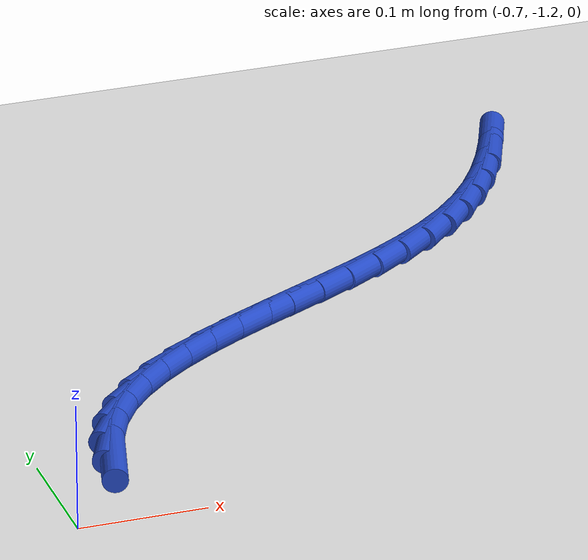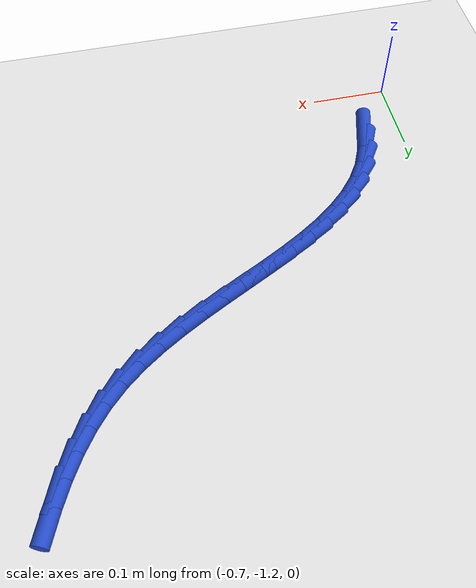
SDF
<sdf version="1.6">
 <world name="default">
  <model name="ground_plane">
   <static>1</static>
   <link name="link">
    <collision name="collision">
     <geometry><plane><normal>0 0 1</normal><size>100 100</size></plane></geometry>
     <surface><friction><ode><mu>100</mu><mu2>50</mu2></ode></friction></surface>
    </collision>
    <visual name="visual">
     <cast_shadows>0</cast_shadows>
     <geometry><plane><normal>0 0 1</normal><size>100 100</size></plane></geometry>
     <material>
      <script><uri>file://media/materials/scripts/gazebo.material</uri><name>Gazebo/WhiteGlow</name></script>
     </material>
    </visual>
   </link>
  </model>
  <model name="line">
   <link name="link_215">
    <pose>-0.6466388675362627 -1.117552065015996 0.01 0 1.57 1.3042101778303579</pose>
    <collision name="collision">
     <geometry><cylinder><radius>0.01</radius><length>0.08</length></cylinder></geometry>
    </collision>
    <visual name="visual">
     <material>
      <script><name>Gazebo/Blue</name><uri>file://media/materials/scripts/gazebo.material</uri></script>
     </material>
     <geometry><cylinder><radius>0.01</radius><length>0.08</length></cylinder></geometry>
    </visual>
   </link>
   <link name="link_216">
    <pose>-0.6388237834743751 -1.0889344253515574 0.01 0 1.57 1.151868854428709</pose>
    <collision name="collision">
     <geometry><cylinder><radius>0.01</radius><length>0.08</length></cylinder></geometry>
    </collision>
    <visual name="visual">
     <material>
      <script><name>Gazebo/Blue</name><uri>file://media/materials/scripts/gazebo.material</uri></script>
     </material>
     <geometry><cylinder><radius>0.01</radius><length>0.08</length></cylinder></geometry>
    </visual>
   </link>
   <link name="link_217">
    <pose>-0.6272215906638352 -1.0628788712777095 0.01 0 1.57 0.9947303204516976</pose>
    <collision name="collision">
     <geometry><cylinder><radius>0.01</radius><length>0.08</length></cylinder></geometry>
    </collision>
    <visual name="visual">
     <material>
      <script><name>Gazebo/Blue</name><uri>file://media/materials/scripts/gazebo.material</uri></script>
     </material>
     <geometry><cylinder><radius>0.01</radius><length>0.08</length></cylinder></geometry>
    </visual>
   </link>
   <link name="link_218">
    <pose>-0.6119136477595648 -1.0393122454727692 0.01 0 1.57 0.8556499760756939</pose>
    <collision name="collision">
     <geometry><cylinder><radius>0.01</radius><length>0.08</length></cylinder></geometry>
    </collision>
    <visual name="visual">
     <material>
      <script><name>Gazebo/Blue</name><uri>file://media/materials/scripts/gazebo.material</uri></script>
     </material>
     <geometry><cylinder><radius>0.01</radius><length>0.08</length></cylinder></geometry>
    </visual>
   </link>
   <link name="link_219">
    <pose>-0.5933403230425779 -1.017927141512641 0.01 0 1.57 0.7392959042799829</pose>
    <collision name="collision">
     <geometry><cylinder><radius>0.01</radius><length>0.08</length></cylinder></geometry>
    </collision>
    <visual name="visual">
     <material>
      <script><name>Gazebo/Blue</name><uri>file://media/materials/scripts/gazebo.material</uri></script>
     </material>
     <geometry><cylinder><radius>0.01</radius><length>0.08</length></cylinder></geometry>
    </visual>
   </link>
   <link name="link_220">
    <pose>-0.5719419847938865 -0.9984161529732266 0.01 0 1.57 0.6463753889763961</pose>
    <collision name="collision">
     <geometry><cylinder><radius>0.01</radius><length>0.08</length></cylinder></geometry>
    </collision>
    <visual name="visual">
     <material>
      <script><name>Gazebo/Blue</name><uri>file://media/materials/scripts/gazebo.material</uri></script>
     </material>
     <geometry><cylinder><radius>0.01</radius><length>0.08</length></cylinder></geometry>
    </visual>
   </link>
   <link name="link_221">
    <pose>-0.5481590012945052 -0.9804718734304303 0.01 0 1.57 0.5753432341024822</pose>
    <collision name="collision">
     <geometry><cylinder><radius>0.01</radius><length>0.08</length></cylinder></geometry>
    </collision>
    <visual name="visual">
     <material>
      <script><name>Gazebo/Blue</name><uri>file://media/materials/scripts/gazebo.material</uri></script>
     </material>
     <geometry><cylinder><radius>0.01</radius><length>0.08</length></cylinder></geometry>
    </visual>
   </link>
   <link name="link_222">
    <pose>-0.5224317408254467 -0.9637868964601546 0.01 0 1.57 0.523906033758094</pose>
    <collision name="collision">
     <geometry><cylinder><radius>0.01</radius><length>0.08</length></cylinder></geometry>
    </collision>
    <visual name="visual">
     <material>
      <script><name>Gazebo/Blue</name><uri>file://media/materials/scripts/gazebo.material</uri></script>
     </material>
     <geometry><cylinder><radius>0.01</radius><length>0.08</length></cylinder></geometry>
    </visual>
   </link>
   <link name="link_223">
    <pose>-0.4952005716677239 -0.9480538156383019 0.01 0 1.57 0.48990447630371464</pose>
    <collision name="collision">
     <geometry><cylinder><radius>0.01</radius><length>0.08</length></cylinder></geometry>
    </collision>
    <visual name="visual">
     <material>
      <script><name>Gazebo/Blue</name><uri>file://media/materials/scripts/gazebo.material</uri></script>
     </material>
     <geometry><cylinder><radius>0.01</radius><length>0.08</length></cylinder></geometry>
    </visual>
   </link>
   <link name="link_224">
    <pose>-0.4669058621023503 -0.9329652245407761 0.01 0 1.57 0.4717085433666247</pose>
    <collision name="collision">
     <geometry><cylinder><radius>0.01</radius><length>0.08</length></cylinder></geometry>
    </collision>
    <visual name="visual">
     <material>
      <script><name>Gazebo/Blue</name><uri>file://media/materials/scripts/gazebo.material</uri></script>
     </material>
     <geometry><cylinder><radius>0.01</radius><length>0.08</length></cylinder></geometry>
    </visual>
   </link>
   <link name="link_225">
    <pose>-0.4379879804103389 -0.91821371674348 0.01 0 1.57 0.46835082781716775</pose>
    <collision name="collision">
     <geometry><cylinder><radius>0.01</radius><length>0.08</length></cylinder></geometry>
    </collision>
    <visual name="visual">
     <material>
      <script><name>Gazebo/Blue</name><uri>file://media/materials/scripts/gazebo.material</uri></script>
     </material>
     <geometry><cylinder><radius>0.01</radius><length>0.08</length></cylinder></geometry>
    </visual>
   </link>
   <link name="link_226">
    <pose>-0.4088872948727028 -0.903491885822316 0.01 0 1.57 0.47955033473732267</pose>
    <collision name="collision">
     <geometry><cylinder><radius>0.01</radius><length>0.08</length></cylinder></geometry>
    </collision>
    <visual name="visual">
     <material>
      <script><name>Gazebo/Blue</name><uri>file://media/materials/scripts/gazebo.material</uri></script>
     </material>
     <geometry><cylinder><radius>0.01</radius><length>0.08</length></cylinder></geometry>
    </visual>
   </link>
   <link name="link_227">
    <pose>-0.3800441737704553 -0.8884923253531876 0.01 0 1.57 0.5056986510972659</pose>
    <collision name="collision">
     <geometry><cylinder><radius>0.01</radius><length>0.08</length></cylinder></geometry>
    </collision>
    <visual name="visual">
     <material>
      <script><name>Gazebo/Blue</name><uri>file://media/materials/scripts/gazebo.material</uri></script>
     </material>
     <geometry><cylinder><radius>0.01</radius><length>0.08</length></cylinder></geometry>
    </visual>
   </link>
   <link name="link_228">
    <pose>-0.3518989853846096 -0.8729076289119978 0.01 0 1.57 0.5478219806365758</pose>
    <collision name="collision">
     <geometry><cylinder><radius>0.01</radius><length>0.08</length></cylinder></geometry>
    </collision>
    <visual name="visual">
     <material>
      <script><name>Gazebo/Blue</name><uri>file://media/materials/scripts/gazebo.material</uri></script>
     </material>
     <geometry><cylinder><radius>0.01</radius><length>0.08</length></cylinder></geometry>
    </visual>
   </link>
   <link name="link_229">
    <pose>-0.3248920979961781 -0.856430390074649 0.01 0 1.57 0.6074837078664357</pose>
    <collision name="collision">
     <geometry><cylinder><radius>0.01</radius><length>0.08</length></cylinder></geometry>
    </collision>
    <visual name="visual">
     <material>
      <script><name>Gazebo/Blue</name><uri>file://media/materials/scripts/gazebo.material</uri></script>
     </material>
     <geometry><cylinder><radius>0.01</radius><length>0.08</length></cylinder></geometry>
    </visual>
   </link>
   <link name="link_230">
    <pose>-0.29946387988617534 -0.8387532024170452 0.01 0 1.57 0.6865369904005008</pose>
    <collision name="collision">
     <geometry><cylinder><radius>0.01</radius><length>0.08</length></cylinder></geometry>
    </collision>
    <visual name="visual">
     <material>
      <script><name>Gazebo/Blue</name><uri>file://media/materials/scripts/gazebo.material</uri></script>
     </material>
     <geometry><cylinder><radius>0.01</radius><length>0.08</length></cylinder></geometry>
    </visual>
   </link>
   <link name="link_231">
    <pose>-0.27605469933561405 -0.8195686595150891 0.01 0 1.57 0.7851688932915137</pose>
    <collision name="collision">
     <geometry><cylinder><radius>0.01</radius><length>0.08</length></cylinder></geometry>
    </collision>
    <visual name="visual">
     <material>
      <script><name>Gazebo/Blue</name><uri>file://media/materials/scripts/gazebo.material</uri></script>
     </material>
     <geometry><cylinder><radius>0.01</radius><length>0.08</length></cylinder></geometry>
    </visual>
   </link>
   <link name="link_232">
    <pose>-0.25507030143662274 -0.7985938816009499 0.01 0 1.57 0.886611798120777</pose>
    <collision name="collision">
     <geometry><cylinder><radius>0.01</radius><length>0.08</length></cylinder></geometry>
    </collision>
    <visual name="visual">
     <material>
      <script><name>Gazebo/Blue</name><uri>file://media/materials/scripts/gazebo.material</uri></script>
     </material>
     <geometry><cylinder><radius>0.01</radius><length>0.08</length></cylinder></geometry>
    </visual>
   </link>
   <link name="link_233">
    <pose>-0.23650817932141485 -0.7758351897520611 0.01 0 1.57 0.977787095081526</pose>
    <collision name="collision">
     <geometry><cylinder><radius>0.01</radius><length>0.08</length></cylinder></geometry>
    </collision>
    <visual name="visual">
     <material>
      <script><name>Gazebo/Blue</name><uri>file://media/materials/scripts/gazebo.material</uri></script>
     </material>
     <geometry><cylinder><radius>0.01</radius><length>0.08</length></cylinder></geometry>
    </visual>
   </link>
   <link name="link_234">
    <pose>-0.2200996779021432 -0.7514874412875985 0.01 0 1.57 1.0569303674947483</pose>
    <collision name="collision">
     <geometry><cylinder><radius>0.01</radius><length>0.08</length></cylinder></geometry>
    </collision>
    <visual name="visual">
     <material>
      <script><name>Gazebo/Blue</name><uri>file://media/materials/scripts/gazebo.material</uri></script>
     </material>
     <geometry><cylinder><radius>0.01</radius><length>0.08</length></cylinder></geometry>
    </visual>
   </link>
   <link name="link_235">
    <pose>-0.2055715806289975 -0.7257487248122796 0.01 0 1.57 1.1234651732584753</pose>
    <collision name="collision">
     <geometry><cylinder><radius>0.01</radius><length>0.08</length></cylinder></geometry>
    </collision>
    <visual name="visual">
     <material>
      <script><name>Gazebo/Blue</name><uri>file://media/materials/scripts/gazebo.material</uri></script>
     </material>
     <geometry><cylinder><radius>0.01</radius><length>0.08</length></cylinder></geometry>
    </visual>
   </link>
   <link name="link_236">
    <pose>-0.19265067095216692 -0.6988171289308216 0.01 0 1.57 1.177502898008264</pose>
    <collision name="collision">
     <geometry><cylinder><radius>0.01</radius><length>0.08</length></cylinder></geometry>
    </collision>
    <visual name="visual">
     <material>
      <script><name>Gazebo/Blue</name><uri>file://media/materials/scripts/gazebo.material</uri></script>
     </material>
     <geometry><cylinder><radius>0.01</radius><length>0.08</length></cylinder></geometry>
    </visual>
   </link>
  </model>
 </world>
</sdf>
